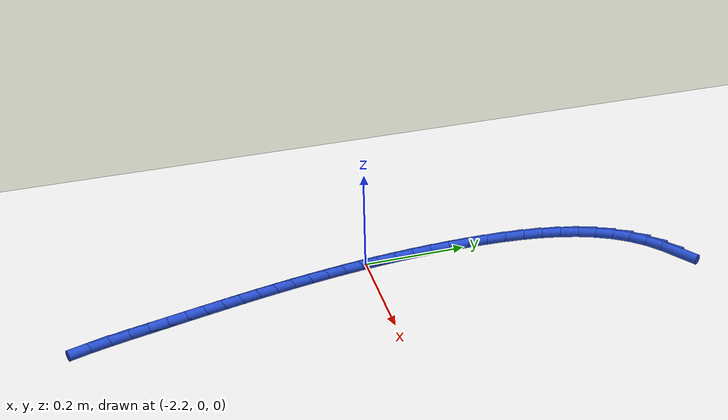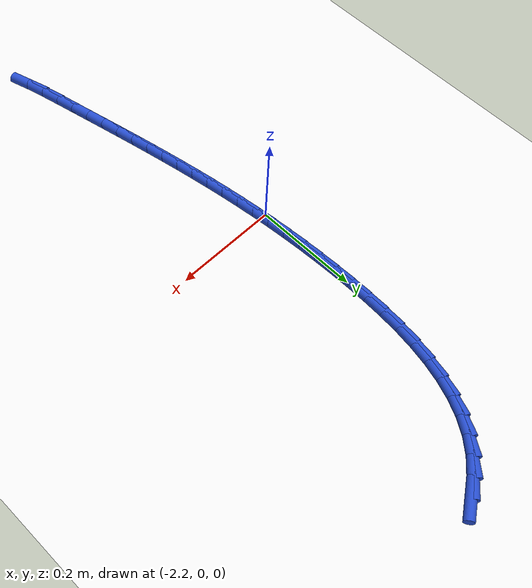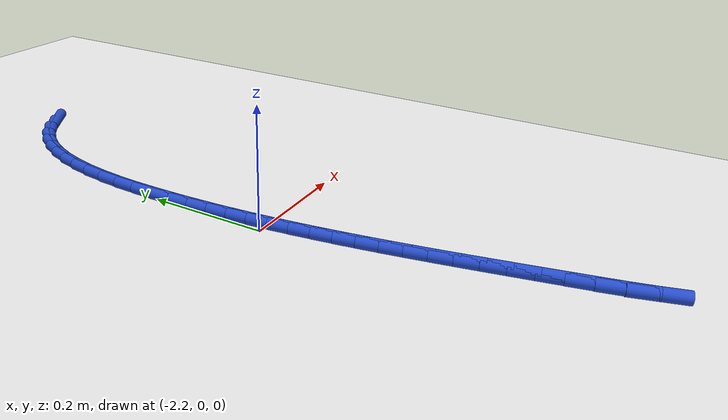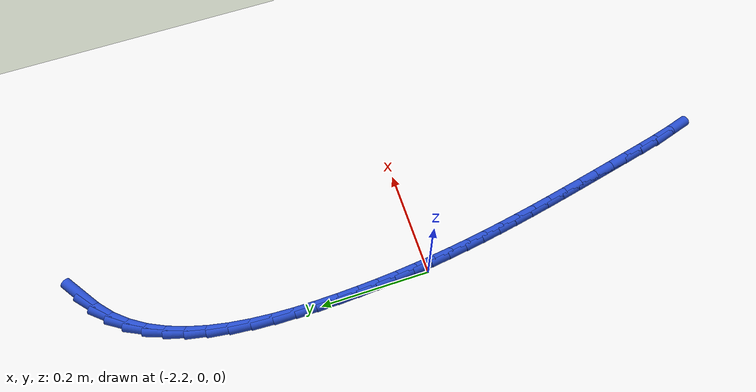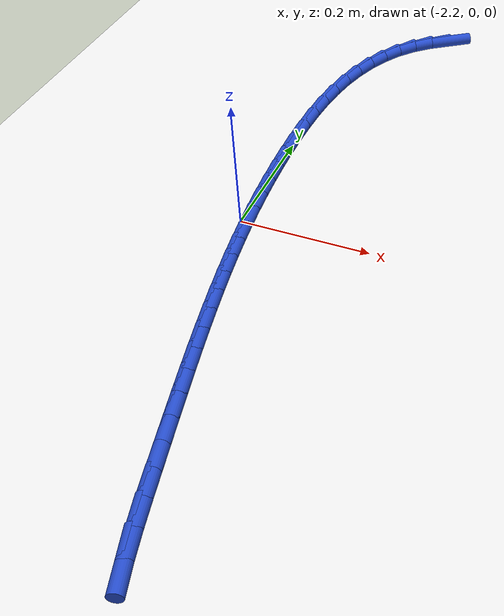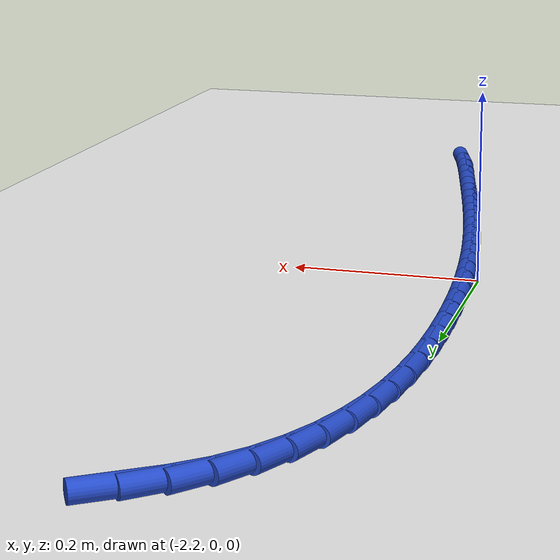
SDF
<sdf version="1.6">
 <world name="default">
  <model name="ground_plane">
   <static>1</static>
   <link name="link">
    <collision name="collision">
     <geometry><plane><normal>0 0 1</normal><size>100 100</size></plane></geometry>
     <surface><friction><ode><mu>100</mu><mu2>50</mu2></ode></friction></surface>
    </collision>
    <visual name="visual">
     <cast_shadows>0</cast_shadows>
     <geometry><plane><normal>0 0 1</normal><size>100 100</size></plane></geometry>
     <material>
      <script><uri>file://media/materials/scripts/gazebo.material</uri><name>Gazebo/WhiteGlow</name></script>
     </material>
    </visual>
   </link>
  </model>
  <model name="line">
   <link name="link_82">
    <pose>-2.0480909865209895 0.5948030311233542 0.01 0 1.57 0.5945350445989791</pose>
    <collision name="collision">
     <geometry><cylinder><radius>0.01</radius><length>0.08</length></cylinder></geometry>
    </collision>
    <visual name="visual">
     <material>
      <script><name>Gazebo/Blue</name><uri>file://media/materials/scripts/gazebo.material</uri></script>
     </material>
     <geometry><cylinder><radius>0.01</radius><length>0.08</length></cylinder></geometry>
    </visual>
   </link>
   <link name="link_83">
    <pose>-2.077242773998619 0.5750922301114021 0.01 0 1.57 0.7098417884961841</pose>
    <collision name="collision">
     <geometry><cylinder><radius>0.01</radius><length>0.08</length></cylinder></geometry>
    </collision>
    <visual name="visual">
     <material>
      <script><name>Gazebo/Blue</name><uri>file://media/materials/scripts/gazebo.material</uri></script>
     </material>
     <geometry><cylinder><radius>0.01</radius><length>0.08</length></cylinder></geometry>
    </visual>
   </link>
   <link name="link_84">
    <pose>-2.1032599299209624 0.5527368950643134 0.01 0 1.57 0.8573596003787936</pose>
    <collision name="collision">
     <geometry><cylinder><radius>0.01</radius><length>0.08</length></cylinder></geometry>
    </collision>
    <visual name="visual">
     <material>
      <script><name>Gazebo/Blue</name><uri>file://media/materials/scripts/gazebo.material</uri></script>
     </material>
     <geometry><cylinder><radius>0.01</radius><length>0.08</length></cylinder></geometry>
    </visual>
   </link>
   <link name="link_85">
    <pose>-2.125465838713474 0.5270808109069178 0.01 0 1.57 0.9928800637606792</pose>
    <collision name="collision">
     <geometry><cylinder><radius>0.01</radius><length>0.08</length></cylinder></geometry>
    </collision>
    <visual name="visual">
     <material>
      <script><name>Gazebo/Blue</name><uri>file://media/materials/scripts/gazebo.material</uri></script>
     </material>
     <geometry><cylinder><radius>0.01</radius><length>0.08</length></cylinder></geometry>
    </visual>
   </link>
   <link name="link_86">
    <pose>-2.1441227568399213 0.4984744321128474 0.01 0 1.57 1.112368443115411</pose>
    <collision name="collision">
     <geometry><cylinder><radius>0.01</radius><length>0.08</length></cylinder></geometry>
    </collision>
    <visual name="visual">
     <material>
      <script><name>Gazebo/Blue</name><uri>file://media/materials/scripts/gazebo.material</uri></script>
     </material>
     <geometry><cylinder><radius>0.01</radius><length>0.08</length></cylinder></geometry>
    </visual>
   </link>
   <link name="link_87">
    <pose>-2.159512457677013 0.4672891394174008 0.01 0 1.57 1.2151286710498674</pose>
    <collision name="collision">
     <geometry><cylinder><radius>0.01</radius><length>0.08</length></cylinder></geometry>
    </collision>
    <visual name="visual">
     <material>
      <script><name>Gazebo/Blue</name><uri>file://media/materials/scripts/gazebo.material</uri></script>
     </material>
     <geometry><cylinder><radius>0.01</radius><length>0.08</length></cylinder></geometry>
    </visual>
   </link>
   <link name="link_88">
    <pose>-2.1719167146014584 0.4338963135558762 0.01 0 1.57 1.302097174556748</pose>
    <collision name="collision">
     <geometry><cylinder><radius>0.01</radius><length>0.08</length></cylinder></geometry>
    </collision>
    <visual name="visual">
     <material>
      <script><name>Gazebo/Blue</name><uri>file://media/materials/scripts/gazebo.material</uri></script>
     </material>
     <geometry><cylinder><radius>0.01</radius><length>0.08</length></cylinder></geometry>
    </visual>
   </link>
   <link name="link_89">
    <pose>-2.1816173009899673 0.3986673352635718 0.01 0 1.57 1.3749751188449615</pose>
    <collision name="collision">
     <geometry><cylinder><radius>0.01</radius><length>0.08</length></cylinder></geometry>
    </collision>
    <visual name="visual">
     <material>
      <script><name>Gazebo/Blue</name><uri>file://media/materials/scripts/gazebo.material</uri></script>
     </material>
     <geometry><cylinder><radius>0.01</radius><length>0.08</length></cylinder></geometry>
    </visual>
   </link>
   <link name="link_90">
    <pose>-2.1888959902192497 0.36197358527578594 0.01 0 1.57 1.4356382488998816</pose>
    <collision name="collision">
     <geometry><cylinder><radius>0.01</radius><length>0.08</length></cylinder></geometry>
    </collision>
    <visual name="visual">
     <material>
      <script><name>Gazebo/Blue</name><uri>file://media/materials/scripts/gazebo.material</uri></script>
     </material>
     <geometry><cylinder><radius>0.01</radius><length>0.08</length></cylinder></geometry>
    </visual>
   </link>
   <link name="link_91">
    <pose>-2.194034555666014 0.3241864443278168 0.01 0 1.57 1.4858213032293657</pose>
    <collision name="collision">
     <geometry><cylinder><radius>0.01</radius><length>0.08</length></cylinder></geometry>
    </collision>
    <visual name="visual">
     <material>
      <script><name>Gazebo/Blue</name><uri>file://media/materials/scripts/gazebo.material</uri></script>
     </material>
     <geometry><cylinder><radius>0.01</radius><length>0.08</length></cylinder></geometry>
    </visual>
   </link>
   <link name="link_92">
    <pose>-2.1973147707069707 0.2856772931549628 0.01 0 1.57 1.5269837325323805</pose>
    <collision name="collision">
     <geometry><cylinder><radius>0.01</radius><length>0.08</length></cylinder></geometry>
    </collision>
    <visual name="visual">
     <material>
      <script><name>Gazebo/Blue</name><uri>file://media/materials/scripts/gazebo.material</uri></script>
     </material>
     <geometry><cylinder><radius>0.01</radius><length>0.08</length></cylinder></geometry>
    </visual>
   </link>
   <link name="link_93">
    <pose>-2.1990184087188287 0.2468175124925222 0.01 0 1.57 1.5602703361519545</pose>
    <collision name="collision">
     <geometry><cylinder><radius>0.01</radius><length>0.08</length></cylinder></geometry>
    </collision>
    <visual name="visual">
     <material>
      <script><name>Gazebo/Blue</name><uri>file://media/materials/scripts/gazebo.material</uri></script>
     </material>
     <geometry><cylinder><radius>0.01</radius><length>0.08</length></cylinder></geometry>
    </visual>
   </link>
   <link name="link_94">
    <pose>-2.1994272430782975 0.20797848307579314 0.01 0 1.57 -1.5550825442600646</pose>
    <collision name="collision">
     <geometry><cylinder><radius>0.01</radius><length>0.08</length></cylinder></geometry>
    </collision>
    <visual name="visual">
     <material>
      <script><name>Gazebo/Blue</name><uri>file://media/materials/scripts/gazebo.material</uri></script>
     </material>
     <geometry><cylinder><radius>0.01</radius><length>0.08</length></cylinder></geometry>
    </visual>
   </link>
   <link name="link_95">
    <pose>-2.1988230471620867 0.16953158564007395 0.01 0 1.57 -1.5346030170293972</pose>
    <collision name="collision">
     <geometry><cylinder><radius>0.01</radius><length>0.08</length></cylinder></geometry>
    </collision>
    <visual name="visual">
     <material>
      <script><name>Gazebo/Blue</name><uri>file://media/materials/scripts/gazebo.material</uri></script>
     </material>
     <geometry><cylinder><radius>0.01</radius><length>0.08</length></cylinder></geometry>
    </visual>
   </link>
   <link name="link_96">
    <pose>-2.1974565124587877 0.13179151820576857 0.01 0 1.57 -1.5157155246747602</pose>
    <collision name="collision">
     <geometry><cylinder><radius>0.01</radius><length>0.08</length></cylinder></geometry>
    </collision>
    <visual name="visual">
     <material>
      <script><name>Gazebo/Blue</name><uri>file://media/materials/scripts/gazebo.material</uri></script>
     </material>
     <geometry><cylinder><radius>0.01</radius><length>0.08</length></cylinder></geometry>
    </visual>
   </link>
   <link name="link_97">
    <pose>-2.1954156171770514 0.09477624551821634 0.01 0 1.57 -1.497231333584526</pose>
    <collision name="collision">
     <geometry><cylinder><radius>0.01</radius><length>0.08</length></cylinder></geometry>
    </collision>
    <visual name="visual">
     <material>
      <script><name>Gazebo/Blue</name><uri>file://media/materials/scripts/gazebo.material</uri></script>
     </material>
     <geometry><cylinder><radius>0.01</radius><length>0.08</length></cylinder></geometry>
    </visual>
   </link>
   <link name="link_98">
    <pose>-2.192735273938727 0.05840695887334556 0.01 0 1.57 -1.4793008406014303</pose>
    <collision name="collision">
     <geometry><cylinder><radius>0.01</radius><length>0.08</length></cylinder></geometry>
    </collision>
    <visual name="visual">
     <material>
      <script><name>Gazebo/Blue</name><uri>file://media/materials/scripts/gazebo.material</uri></script>
     </material>
     <geometry><cylinder><radius>0.01</radius><length>0.08</length></cylinder></geometry>
    </visual>
   </link>
   <link name="link_99">
    <pose>-2.1894503660830233 0.022604796165582884 0.01 0 1.57 -1.4620745647119342</pose>
    <collision name="collision">
     <geometry><cylinder><radius>0.01</radius><length>0.08</length></cylinder></geometry>
    </collision>
    <visual name="visual">
     <material>
      <script><name>Gazebo/Blue</name><uri>file://media/materials/scripts/gazebo.material</uri></script>
     </material>
     <geometry><cylinder><radius>0.01</radius><length>0.08</length></cylinder></geometry>
    </visual>
   </link>
   <link name="link_100">
    <pose>-2.185595776949152 -0.012709104710645168 0.01 0 1.57 -1.4456988197776586</pose>
    <collision name="collision">
     <geometry><cylinder><radius>0.01</radius><length>0.08</length></cylinder></geometry>
    </collision>
    <visual name="visual">
     <material>
      <script><name>Gazebo/Blue</name><uri>file://media/materials/scripts/gazebo.material</uri></script>
     </material>
     <geometry><cylinder><radius>0.01</radius><length>0.08</length></cylinder></geometry>
    </visual>
   </link>
   <link name="link_101">
    <pose>-2.181206389876321 -0.04761360586091194 0.01 0 1.57 -1.430312158516964</pose>
    <collision name="collision">
     <geometry><cylinder><radius>0.01</radius><length>0.08</length></cylinder></geometry>
    </collision>
    <visual name="visual">
     <material>
      <script><name>Gazebo/Blue</name><uri>file://media/materials/scripts/gazebo.material</uri></script>
     </material>
     <geometry><cylinder><radius>0.01</radius><length>0.08</length></cylinder></geometry>
    </visual>
   </link>
   <link name="link_102">
    <pose>-2.1763170882037404 -0.08218756939079078 0.01 0 1.57 -1.4160420432087333</pose>
    <collision name="collision">
     <geometry><cylinder><radius>0.01</radius><length>0.08</length></cylinder></geometry>
    </collision>
    <visual name="visual">
     <material>
      <script><name>Gazebo/Blue</name><uri>file://media/materials/scripts/gazebo.material</uri></script>
     </material>
     <geometry><cylinder><radius>0.01</radius><length>0.08</length></cylinder></geometry>
    </visual>
   </link>
   <link name="link_103">
    <pose>-2.1709627552706205 -0.11650985740585507 0.01 0 1.57 -1.403001903673933</pose>
    <collision name="collision">
     <geometry><cylinder><radius>0.01</radius><length>0.08</length></cylinder></geometry>
    </collision>
    <visual name="visual">
     <material>
      <script><name>Gazebo/Blue</name><uri>file://media/materials/scripts/gazebo.material</uri></script>
     </material>
     <geometry><cylinder><radius>0.01</radius><length>0.08</length></cylinder></geometry>
    </visual>
   </link>
   <link name="link_104">
    <pose>-2.1651782744161707 -0.15065933201167825 0.01 0 1.57 -1.3912887109500105</pose>
    <collision name="collision">
     <geometry><cylinder><radius>0.01</radius><length>0.08</length></cylinder></geometry>
    </collision>
    <visual name="visual">
     <material>
      <script><name>Gazebo/Blue</name><uri>file://media/materials/scripts/gazebo.material</uri></script>
     </material>
     <geometry><cylinder><radius>0.01</radius><length>0.08</length></cylinder></geometry>
    </visual>
   </link>
   <link name="link_105">
    <pose>-2.1589985289796005 -0.18471485531383366 0.01 0 1.57 -1.380981154125256</pose>
    <collision name="collision">
     <geometry><cylinder><radius>0.01</radius><length>0.08</length></cylinder></geometry>
    </collision>
    <visual name="visual">
     <material>
      <script><name>Gazebo/Blue</name><uri>file://media/materials/scripts/gazebo.material</uri></script>
     </material>
     <geometry><cylinder><radius>0.01</radius><length>0.08</length></cylinder></geometry>
    </visual>
   </link>
   <link name="link_106">
    <pose>-2.1524584023001205 -0.21875528941789468 0.01 0 1.57 -1.3721384635345395</pose>
    <collision name="collision">
     <geometry><cylinder><radius>0.01</radius><length>0.08</length></cylinder></geometry>
    </collision>
    <visual name="visual">
     <material>
      <script><name>Gazebo/Blue</name><uri>file://media/materials/scripts/gazebo.material</uri></script>
     </material>
     <geometry><cylinder><radius>0.01</radius><length>0.08</length></cylinder></geometry>
    </visual>
   </link>
   <link name="link_107">
    <pose>-2.145592777716939 -0.2528594964294346 0.01 0 1.57 -1.3647998811625872</pose>
    <collision name="collision">
     <geometry><cylinder><radius>0.01</radius><length>0.08</length></cylinder></geometry>
    </collision>
    <visual name="visual">
     <material>
      <script><name>Gazebo/Blue</name><uri>file://media/materials/scripts/gazebo.material</uri></script>
     </material>
     <geometry><cylinder><radius>0.01</radius><length>0.08</length></cylinder></geometry>
    </visual>
   </link>
   <link name="link_108">
    <pose>-2.1384365385692674 -0.28710633845402705 0.01 0 1.57 -1.3589847427759227</pose>
    <collision name="collision">
     <geometry><cylinder><radius>0.01</radius><length>0.08</length></cylinder></geometry>
    </collision>
    <visual name="visual">
     <material>
      <script><name>Gazebo/Blue</name><uri>file://media/materials/scripts/gazebo.material</uri></script>
     </material>
     <geometry><cylinder><radius>0.01</radius><length>0.08</length></cylinder></geometry>
    </visual>
   </link>
   <link name="link_109">
    <pose>-2.131024568196314 -0.3215746775972451 0.01 0 1.57 -1.3546931085508704</pose>
    <collision name="collision">
     <geometry><cylinder><radius>0.01</radius><length>0.08</length></cylinder></geometry>
    </collision>
    <visual name="visual">
     <material>
      <script><name>Gazebo/Blue</name><uri>file://media/materials/scripts/gazebo.material</uri></script>
     </material>
     <geometry><cylinder><radius>0.01</radius><length>0.08</length></cylinder></geometry>
    </visual>
   </link>
   <link name="link_110">
    <pose>-2.123391749937289 -0.35634337596466237 0.01 0 1.57 -1.3519068606553382</pose>
    <collision name="collision">
     <geometry><cylinder><radius>0.01</radius><length>0.08</length></cylinder></geometry>
    </collision>
    <visual name="visual">
     <material>
      <script><name>Gazebo/Blue</name><uri>file://media/materials/scripts/gazebo.material</uri></script>
     </material>
     <geometry><cylinder><radius>0.01</radius><length>0.08</length></cylinder></geometry>
    </visual>
   </link>
   <link name="link_111">
    <pose>-2.1155729671314027 -0.39149129566185215 0.01 0 1.57 -1.3505911768722632</pose>
    <collision name="collision">
     <geometry><cylinder><radius>0.01</radius><length>0.08</length></cylinder></geometry>
    </collision>
    <visual name="visual">
     <material>
      <script><name>Gazebo/Blue</name><uri>file://media/materials/scripts/gazebo.material</uri></script>
     </material>
     <geometry><cylinder><radius>0.01</radius><length>0.08</length></cylinder></geometry>
    </visual>
   </link>
   <link name="link_112">
    <pose>-2.1076031031178646 -0.4270972987943879 0.01 0 1.57 -1.3499958903005331</pose>
    <collision name="collision">
     <geometry><cylinder><radius>0.01</radius><length>0.08</length></cylinder></geometry>
    </collision>
    <visual name="visual">
     <material>
      <script><name>Gazebo/Blue</name><uri>file://media/materials/scripts/gazebo.material</uri></script>
     </material>
     <geometry><cylinder><radius>0.01</radius><length>0.08</length></cylinder></geometry>
    </visual>
   </link>
   <link name="link_113">
    <pose>-2.0994961800970824 -0.4632147440258718 0.01 0 1.57 -1.3413755071904494</pose>
    <collision name="collision">
     <geometry><cylinder><radius>0.01</radius><length>0.08</length></cylinder></geometry>
    </collision>
    <visual name="visual">
     <material>
      <script><name>Gazebo/Blue</name><uri>file://media/materials/scripts/gazebo.material</uri></script>
     </material>
     <geometry><cylinder><radius>0.01</radius><length>0.08</length></cylinder></geometry>
    </visual>
   </link>
   <link name="link_114">
    <pose>-2.091004425725523 -0.49957693740803377 0.01 0 1.57 -1.3187330189739697</pose>
    <collision name="collision">
     <geometry><cylinder><radius>0.01</radius><length>0.08</length></cylinder></geometry>
    </collision>
    <visual name="visual">
     <material>
      <script><name>Gazebo/Blue</name><uri>file://media/materials/scripts/gazebo.material</uri></script>
     </material>
     <geometry><cylinder><radius>0.01</radius><length>0.08</length></cylinder></geometry>
    </visual>
   </link>
   <link name="link_115">
    <pose>-2.0817015361140108 -0.5356989241892139 0.01 0 1.57 -1.2812592825569769</pose>
    <collision name="collision">
     <geometry><cylinder><radius>0.01</radius><length>0.08</length></cylinder></geometry>
    </collision>
    <visual name="visual">
     <material>
      <script><name>Gazebo/Blue</name><uri>file://media/materials/scripts/gazebo.material</uri></script>
     </material>
     <geometry><cylinder><radius>0.01</radius><length>0.08</length></cylinder></geometry>
    </visual>
   </link>
  </model>
 </world>
</sdf>
